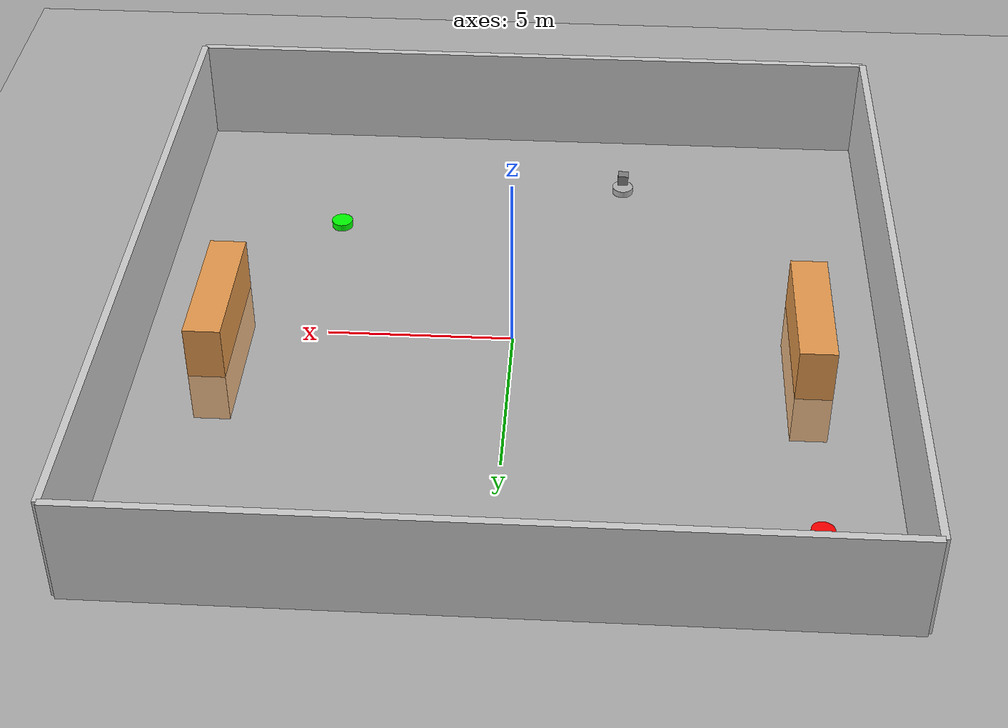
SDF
<?xml version='1.0' encoding='utf-8'?>
<sdf version="1.7">
  <world name="warehouse_world">

    <physics name="default_physics" default="0" type="ode">
      <max_step_size>0.001</max_step_size>
      <real_time_factor>1.0</real_time_factor>
      <real_time_update_rate>1000</real_time_update_rate>
      <ode>
        <solver>
          <type>quick</type>
          <iters>150</iters>
          <sor>1.3</sor>
        </solver>
        <constraints>
          <cfm>0.00001</cfm>
          <erp>0.2</erp>
          <contact_max_correcting_vel>1000.0</contact_max_correcting_vel>
          <contact_surface_layer>0.01</contact_surface_layer>
        </constraints>
      </ode>
    </physics>

    <plugin name="gz::sim::systems::Physics" filename="gz-sim-physics-system" />
    <plugin name="gz::sim::systems::UserCommands" filename="gz-sim-user-commands-system" />
    <plugin name="gz::sim::systems::SceneBroadcaster" filename="gz-sim-scene-broadcaster-system" />
    <plugin name="gz::sim::systems::Contact" filename="gz-sim-contact-system" />

    <scene>
      <ambient>0.4 0.4 0.4 1.0</ambient>
      <background>0.7 0.7 0.7 1.0</background>
      <shadows>1</shadows>
    </scene>

    <light type="directional" name="sun">
      <cast_shadows>true</cast_shadows>
      <pose>0 0 10 0 0 0</pose>
      <diffuse>1.0 1.0 1.0 1</diffuse>
      <specular>0.2 0.2 0.2 1</specular>
      <attenuation>
        <range>1000</range>
        <constant>0.9</constant>
        <linear>0.01</linear>
        <quadratic>0.001</quadratic>
      </attenuation>
      <direction>0.2 0.2 -1.0</direction>
    </light>

    <light type="point" name="warehouse_light1">
      <pose>5 5 8 0 0 0</pose>
      <diffuse>0.8 0.8 0.8 1</diffuse>
      <specular>0.1 0.1 0.1 1</specular>
      <attenuation>
        <range>50</range>
        <constant>0.5</constant>
        <linear>0.01</linear>
        <quadratic>0.001</quadratic>
      </attenuation>
    </light>

    <light type="point" name="warehouse_light2">
      <pose>-5 -5 8 0 0 0</pose>
      <diffuse>0.8 0.8 0.8 1</diffuse>
      <specular>0.1 0.1 0.1 1</specular>
      <attenuation>
        <range>50</range>
        <constant>0.5</constant>
        <linear>0.01</linear>
        <quadratic>0.001</quadratic>
      </attenuation>
    </light>

    <model name="ground_plane">
      <static>true</static>
      <pose>0 0 0 0 0 0</pose>

      <link name="ground_link">
        <visual name="ground_visual">
          <geometry>
            <plane>
              <normal>0 0 1</normal>
              <size>20 20</size>
            </plane>
          </geometry>
          <material>
            <ambient>0.5 0.5 0.5 1.0</ambient>
            <diffuse>0.8 0.8 0.8 1.0</diffuse>
            <specular>0.1 0.1 0.1 1.0</specular>
            <emissive>0.0 0.0 0.0 1.0</emissive>
          </material>
        </visual>

        <collision name="ground_collision">
          <geometry>
            <plane>
              <normal>0 0 1</normal>
              <size>20 20</size>
            </plane>
          </geometry>
          <surface>
            <friction>
              <ode>
                <mu>0.8</mu>
                <mu2>0.8</mu2>
                <fdir1>0 0 0</fdir1>
                <slip1>0.0</slip1>
                <slip2>0.0</slip2>
              </ode>
            </friction>
            <bounce>
              <restitution_coefficient>0.3</restitution_coefficient>
              <threshold>1.0</threshold>
            </bounce>
            <contact>
              <ode>
                <soft_cfm>0.0</soft_cfm>
                <soft_erp>0.2</soft_erp>
                <kp>1e8</kp>
                <kd>1.0</kd>
                <max_vel>0.01</max_vel>
                <min_depth>0.001</min_depth>
              </ode>
            </contact>
          </surface>
        </collision>
      </link>
    </model>

    <model name="shelf_1">
      <static>true</static>
      <pose>8 0 0 0 0 0</pose>
      <link name="shelf_link">
        <visual name="shelf_visual">
          <geometry>
            <box>
              <size>1 4 3</size>
            </box>
          </geometry>
          <material>
            <ambient>0.7 0.4 0.2 1.0</ambient>
            <diffuse>0.9 0.6 0.3 1.0</diffuse>
          </material>
        </visual>
      </link>
    </model>

    <model name="shelf_2">
      <static>true</static>
      <pose>-8 0 0 0 0 0</pose>
      <link name="shelf_link">
        <visual name="shelf_visual">
          <geometry>
            <box>
              <size>1 4 3</size>
            </box>
          </geometry>
          <material>
            <ambient>0.7 0.4 0.2 1.0</ambient>
            <diffuse>0.9 0.6 0.3 1.0</diffuse>
          </material>
        </visual>
      </link>
    </model>

    <model name="wall_north">
      <static>true</static>
      <pose>0 10 1.5 0 0 0</pose>
      <link name="wall_link">
        <visual name="wall_visual">
          <geometry>
            <box>
              <size>20 0.2 3</size>
            </box>
          </geometry>
          <material>
            <ambient>0.6 0.6 0.6 1.0</ambient>
            <diffuse>0.8 0.8 0.8 1.0</diffuse>
          </material>
        </visual>
        <collision name="wall_collision">
          <geometry>
            <box>
              <size>20 0.2 3</size>
            </box>
          </geometry>
        </collision>
      </link>
    </model>

    <model name="wall_south">
      <static>true</static>
      <pose>0 -10 1.5 0 0 0</pose>
      <link name="wall_link">
        <visual name="wall_visual">
          <geometry>
            <box>
              <size>20 0.2 3</size>
            </box>
          </geometry>
          <material>
            <ambient>0.6 0.6 0.6 1.0</ambient>
            <diffuse>0.8 0.8 0.8 1.0</diffuse>
          </material>
        </visual>
        <collision name="wall_collision">
          <geometry>
            <box>
              <size>20 0.2 3</size>
            </box>
          </geometry>
        </collision>
      </link>
    </model>

    <model name="wall_east">
      <static>true</static>
      <pose>10 0 1.5 0 0 0</pose>
      <link name="wall_link">
        <visual name="wall_visual">
          <geometry>
            <box>
              <size>0.2 20 3</size>
            </box>
          </geometry>
          <material>
            <ambient>0.6 0.6 0.6 1.0</ambient>
            <diffuse>0.8 0.8 0.8 1.0</diffuse>
          </material>
        </visual>
        <collision name="wall_collision">
          <geometry>
            <box>
              <size>0.2 20 3</size>
            </box>
          </geometry>
        </collision>
      </link>
    </model>

    <model name="wall_west">
      <static>true</static>
      <pose>-10 0 1.5 0 0 0</pose>
      <link name="wall_link">
        <visual name="wall_visual">
          <geometry>
            <box>
              <size>0.2 20 3</size>
            </box>
          </geometry>
          <material>
            <ambient>0.6 0.6 0.6 1.0</ambient>
            <diffuse>0.8 0.8 0.8 1.0</diffuse>
          </material>
        </visual>
        <collision name="wall_collision">
          <geometry>
            <box>
              <size>0.2 20 3</size>
            </box>
          </geometry>
        </collision>
      </link>
    </model>

    <model name="start_marker">
      <static>true</static>
      <pose>5.280671673952289 -5.017526257384826 0.1 0 0 0</pose>
      <link name="marker_link">
        <visual name="marker_visual">
          <geometry>
            <cylinder>
              <radius>0.3</radius>
              <length>0.2</length>
            </cylinder>
          </geometry>
          <material>
            <ambient>0.0 1.0 0.0 1.0</ambient>
            <diffuse>0.0 1.0 0.0 1.0</diffuse>
            <specular>0.2 0.2 0.2 1.0</specular>
            <emissive>0.1 0.1 0.1 1.0</emissive>
          </material>
        </visual>
      </link>
    </model><model name="package_marker">
      <static>true</static>
      <pose>-2.9085187362673492 -7.217091261914604 0.1 0 0 0</pose>
      <link name="marker_link">
        <visual name="marker_visual">
          <geometry>
            <cylinder>
              <radius>0.3</radius>
              <length>0.2</length>
            </cylinder>
          </geometry>
          <material>
            <ambient>0.7 0.7 0.7 1.0</ambient>
            <diffuse>0.7 0.7 0.7 1.0</diffuse>
            <specular>0.2 0.2 0.2 1.0</specular>
            <emissive>0.1 0.1 0.1 1.0</emissive>
          </material>
        </visual>
      </link>
    </model><model name="destination_marker">
      <static>true</static>
      <pose>-7.861024539916753 7.040757313670603 0.1 0 0 0</pose>
      <link name="marker_link">
        <visual name="marker_visual">
          <geometry>
            <cylinder>
              <radius>0.3</radius>
              <length>0.2</length>
            </cylinder>
          </geometry>
          <material>
            <ambient>1.0 0.0 0.0 1.0</ambient>
            <diffuse>1.0 0.0 0.0 1.0</diffuse>
            <specular>0.2 0.2 0.2 1.0</specular>
            <emissive>0.1 0.1 0.1 1.0</emissive>
          </material>
        </visual>
      </link>
    </model><model name="pickup_package">
      <static>false</static>
      <pose>-2.9085187362673492 -7.217091261914604 0.5 0 0 0</pose>
      <link name="package_link">
        <inertial>
          <mass>0.5</mass>
          <inertia>
            <ixx>0.02</ixx>
            <iyy>0.02</iyy>
            <izz>0.02</izz>
          </inertia>
        </inertial>
        <visual name="package_visual">
          <geometry>
            <box>
              <size>0.3 0.3 0.3</size>
            </box>
          </geometry>
          <material>
            <ambient>0.5 0.5 0.5 1.0</ambient>
            <diffuse>0.5 0.5 0.5 1.0</diffuse>
            <specular>0.3 0.3 0.3 1.0</specular>
          </material>
        </visual>
        <collision name="package_collision">
          <geometry>
            <box>
              <size>0.3 0.3 0.3</size>
            </box>
          </geometry>
          <surface>
            <friction>
              <ode>
                <mu>1.0</mu>
                <mu2>1.0</mu2>
              </ode>
            </friction>
          </surface>
        </collision>
      </link>
    </model></world>
</sdf>
